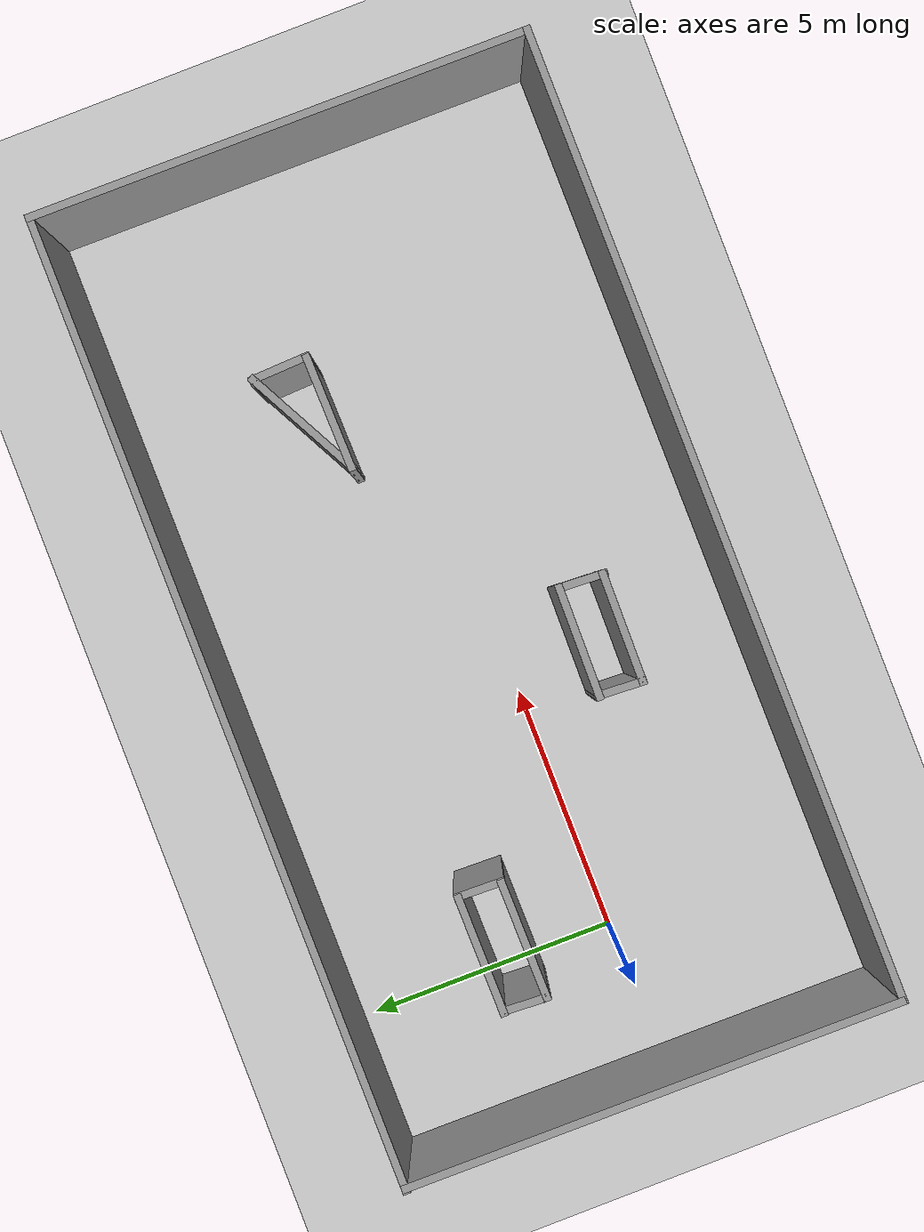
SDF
<sdf version="1.6">
 <world name="default">
  <light name="sun" type="directional">
   <pose>0 0 10 0 -0 0</pose>
   <diffuse>0.8 0.8 0.8 1</diffuse>
   <specular>0.2 0.2 0.2 1</specular>
   <attenuation>
    <range>1000</range>
    <constant>0.9</constant>
    <linear>0.01</linear>
    <quadratic>0.001</quadratic>
   </attenuation>
   <direction>-0.5 0.1 -0.9</direction>
  </light>
  <model name="ground_plane">
   <static>1</static>
   <link name="link">
    <collision name="collision">
     <geometry><plane><normal>0 0 1</normal><size>100 100</size></plane></geometry>
     <surface>
      <contact><collide_bitmask>65535</collide_bitmask></contact>
      <friction><ode><mu>100</mu><mu2>50</mu2></ode></friction>
     </surface>
    </collision>
    <visual name="visual">
     <cast_shadows>0</cast_shadows>
     <geometry><plane><normal>0 0 1</normal><size>100 100</size></plane></geometry>
     <material>
      <script><uri>file://media/materials/scripts/gazebo.material</uri><name>Gazebo/Grey</name></script>
     </material>
    </visual>
   </link>
  </model>
  <gravity>0 0 -9.8</gravity>
  <magnetic_field>6e-06 2.3e-05 -4.2e-05</magnetic_field>
  <atmosphere type="adiabatic"/>
  <physics name="default_physics" default="0" type="ode">
   <max_step_size>0.001</max_step_size>
   <real_time_factor>1</real_time_factor>
   <real_time_update_rate>1000</real_time_update_rate>
  </physics>
  <scene><ambient>0.4 0.4 0.4 1</ambient><background>0.7 0.7 0.7 1</background><shadows>1</shadows></scene>
  <audio><device>default</device></audio>
  <spherical_coordinates>
   <surface_model>EARTH_WGS84</surface_model>
   <latitude_deg>0</latitude_deg>
   <longitude_deg>0</longitude_deg>
   <elevation>0</elevation>
   <heading_deg>0</heading_deg>
  </spherical_coordinates>
  <model name="Overview2">
   <pose>6.93362 0.397648 0 0 -0 0</pose>
   <link name="Wall_32">
    <collision name="Wall_32_Collision">
     <geometry><box><size>10.0002 0.15 2.5</size></box></geometry>
     <pose>0 0 1.25 0 -0 0</pose>
    </collision>
    <visual name="Wall_32_Visual">
     <pose>0 0 1.25 0 -0 0</pose>
     <geometry><box><size>10.0002 0.15 2.5</size></box></geometry>
     <material>
      <script><uri>file://media/materials/scripts/gazebo.material</uri><name>Gazebo/Grey</name></script>
      <ambient>1 1 1 1</ambient>
     </material>
     <meta><layer>0</layer></meta>
    </visual>
    <pose>-9.6597 -0.015408 0 0 -0 -1.57701</pose>
   </link>
   <link name="Wall_33">
    <collision name="Wall_33_Collision">
     <geometry><box><size>19.4695 0.15 2.5</size></box></geometry>
     <pose>0 0 1.25 0 -0 0</pose>
    </collision>
    <visual name="Wall_33_Visual">
     <pose>0 0 1.25 0 -0 0</pose>
     <geometry><box><size>19.4695 0.15 2.5</size></box></geometry>
     <material>
      <script><uri>file://media/materials/scripts/gazebo.material</uri><name>Gazebo/Grey</name></script>
      <ambient>1 1 1 1</ambient>
     </material>
     <meta><layer>0</layer></meta>
    </visual>
    <pose>-0.030589 -4.94041 0 0 -0 0.003167</pose>
   </link>
   <link name="Wall_34">
    <collision name="Wall_34_Collision">
     <geometry><box><size>10.0308 0.15 2.5</size></box></geometry>
     <pose>0 0 1.25 0 -0 0</pose>
    </collision>
    <visual name="Wall_34_Visual">
     <pose>0 0 1.25 0 -0 0</pose>
     <geometry><box><size>10.0308 0.15 2.5</size></box></geometry>
     <material>
      <script><uri>file://media/materials/scripts/gazebo.material</uri><name>Gazebo/Grey</name></script>
      <ambient>1 1 1 1</ambient>
     </material>
     <meta><layer>0</layer></meta>
    </visual>
    <pose>9.65971 0.030477 0 0 -0 1.5646</pose>
   </link>
   <link name="Wall_35">
    <collision name="Wall_35_Collision">
     <geometry><box><size>19.4695 0.15 2.5</size></box></geometry>
     <pose>0 0 1.25 0 -0 0</pose>
    </collision>
    <visual name="Wall_35_Visual">
     <pose>0 0 1.25 0 -0 0</pose>
     <geometry><box><size>19.4695 0.15 2.5</size></box></geometry>
     <material>
      <script><uri>file://media/materials/scripts/gazebo.material</uri><name>Gazebo/Grey</name></script>
      <ambient>1 1 1 1</ambient>
     </material>
     <meta><layer>0</layer></meta>
    </visual>
    <pose>1e-06 4.94018 0 0 -0 -3.13843</pose>
   </link>
   <link name="Wall_41">
    <collision name="Wall_41_Collision">
     <geometry><box><size>2.43072 0.15 2.5</size></box></geometry>
     <pose>0 0 1.25 0 -0 0</pose>
    </collision>
    <visual name="Wall_41_Visual">
     <pose>0 0 1.25 0 -0 0</pose>
     <geometry><box><size>2.43072 0.15 2.5</size></box></geometry>
     <material>
      <script><uri>file://media/materials/scripts/gazebo.material</uri><name>Gazebo/Grey</name></script>
      <ambient>1 1 1 1</ambient>
     </material>
     <meta><layer>0</layer></meta>
    </visual>
    <pose>-6.11385 1.19838 0 0 -0 0.010142</pose>
   </link>
   <link name="Wall_42">
    <collision name="Wall_42_Collision">
     <geometry><box><size>1 0.15 2.5</size></box></geometry>
     <pose>0 0 1.25 0 -0 0</pose>
    </collision>
    <visual name="Wall_42_Visual">
     <pose>0 0 1.25 0 -0 0</pose>
     <geometry><box><size>1 0.15 2.5</size></box></geometry>
     <material>
      <script><uri>file://media/materials/scripts/gazebo.material</uri><name>Gazebo/Grey</name></script>
      <ambient>1 1 1 1</ambient>
     </material>
     <meta><layer>0</layer></meta>
    </visual>
    <pose>-4.93885 1.63494 0 0 -0 1.54359</pose>
   </link>
   <link name="Wall_43">
    <collision name="Wall_43_Collision">
     <geometry><box><size>2.43072 0.15 2.5</size></box></geometry>
     <pose>0 0 1.25 0 -0 0</pose>
    </collision>
    <visual name="Wall_43_Visual">
     <pose>0 0 1.25 0 -0 0</pose>
     <geometry><box><size>2.43072 0.15 2.5</size></box></geometry>
     <material>
      <script><uri>file://media/materials/scripts/gazebo.material</uri><name>Gazebo/Grey</name></script>
      <ambient>1 1 1 1</ambient>
     </material>
     <meta><layer>0</layer></meta>
    </visual>
    <pose>-6.09072 2.04838 0 0 -0 -3.13145</pose>
   </link>
   <link name="Wall_44">
    <collision name="Wall_44_Collision">
     <geometry><box><size>1.00126 0.15 2.5</size></box></geometry>
     <pose>0 0 1.25 0 -0 0</pose>
    </collision>
    <visual name="Wall_44_Visual">
     <pose>0 0 1.25 0 -0 0</pose>
     <geometry><box><size>1.00126 0.15 2.5</size></box></geometry>
     <material>
      <script><uri>file://media/materials/scripts/gazebo.material</uri><name>Gazebo/Grey</name></script>
      <ambient>1 1 1 1</ambient>
     </material>
     <meta><layer>0</layer></meta>
    </visual>
    <pose>-7.23103 1.61181 0 0 -0 -1.62517</pose>
   </link>
   <link name="Wall_46">
    <collision name="Wall_46_Collision">
     <geometry><box><size>1.00126 0.15 2.5</size></box></geometry>
     <pose>0 0 1.25 0 -0 0</pose>
    </collision>
    <visual name="Wall_46_Visual">
     <pose>0 0 1.25 0 -0 0</pose>
     <geometry><box><size>1.00126 0.15 2.5</size></box></geometry>
     <material>
      <script><uri>file://media/materials/scripts/gazebo.material</uri><name>Gazebo/Grey</name></script>
      <ambient>1 1 1 1</ambient>
     </material>
     <meta><layer>0</layer></meta>
    </visual>
    <pose>-2.39673 -2.15264 0 0 -0 -1.62517</pose>
   </link>
   <link name="Wall_47">
    <collision name="Wall_47_Collision">
     <geometry><box><size>2.27326 0.15 2.5</size></box></geometry>
     <pose>0 0 1.25 0 -0 0</pose>
    </collision>
    <visual name="Wall_47_Visual">
     <pose>0 0 1.25 0 -0 0</pose>
     <geometry><box><size>2.27326 0.15 2.5</size></box></geometry>
     <material>
      <script><uri>file://media/materials/scripts/gazebo.material</uri><name>Gazebo/Grey</name></script>
      <ambient>1 1 1 1</ambient>
     </material>
     <meta><layer>0</layer></meta>
    </visual>
    <pose>-1.35829 -2.58921 0 0 -0 -0.010894</pose>
   </link>
   <link name="Wall_48">
    <collision name="Wall_48_Collision">
     <geometry><box><size>1.00126 0.15 2.5</size></box></geometry>
     <pose>0 0 1.25 0 -0 0</pose>
    </collision>
    <visual name="Wall_48_Visual">
     <pose>0 0 1.25 0 -0 0</pose>
     <geometry><box><size>1.00126 0.15 2.5</size></box></geometry>
     <material>
      <script><uri>file://media/materials/scripts/gazebo.material</uri><name>Gazebo/Grey</name></script>
      <ambient>1 1 1 1</ambient>
     </material>
     <meta><layer>0</layer></meta>
    </visual>
    <pose>-0.273598 -2.1989 0 0 -0 1.51642</pose>
   </link>
   <link name="Wall_49">
    <collision name="Wall_49_Collision">
     <geometry><box><size>2.29738 0.15 2.5</size></box></geometry>
     <pose>0 0 1.25 0 -0 0</pose>
    </collision>
    <visual name="Wall_49_Visual">
     <pose>0 0 1.25 0 -0 0</pose>
     <geometry><box><size>2.29738 0.15 2.5</size></box></geometry>
     <material>
      <script><uri>file://media/materials/scripts/gazebo.material</uri><name>Gazebo/Grey</name></script>
      <ambient>1 1 1 1</ambient>
     </material>
     <meta><layer>0</layer></meta>
    </visual>
    <pose>-1.3236 -1.73921 0 0 -0 3.13082</pose>
   </link>
   <link name="Wall_51">
    <collision name="Wall_51_Collision">
     <geometry><box><size>2.34301 0.15 2.5</size></box></geometry>
     <pose>0 0 1.25 0 -0 0</pose>
    </collision>
    <visual name="Wall_51_Visual">
     <pose>0 0 1.25 0 -0 0</pose>
     <geometry><box><size>2.34301 0.15 2.5</size></box></geometry>
     <material>
      <script><uri>file://media/materials/scripts/gazebo.material</uri><name>Gazebo/Grey</name></script>
      <ambient>1 1 1 1</ambient>
     </material>
     <meta><layer>0</layer></meta>
    </visual>
    <pose>4.32027 1.07116 0 0 -0 0.021096</pose>
   </link>
   <link name="Wall_52">
    <collision name="Wall_52_Collision">
     <geometry><box><size>1.22712 0.15 2.5</size></box></geometry>
     <pose>0 0 1.25 0 -0 0</pose>
    </collision>
    <visual name="Wall_52_Visual">
     <pose>0 0 1.25 0 -0 0</pose>
     <geometry><box><size>1.22712 0.15 2.5</size></box></geometry>
     <material>
      <script><uri>file://media/materials/scripts/gazebo.material</uri><name>Gazebo/Grey</name></script>
      <ambient>1 1 1 1</ambient>
     </material>
     <meta><layer>0</layer></meta>
    </visual>
    <pose>5.41653 1.63272 0 0 -0 1.61373</pose>
   </link>
   <link name="Wall_53">
    <collision name="Wall_53_Collision">
     <geometry><box><size>2.57237 0.15 2.5</size></box></geometry>
     <pose>0 0 1.25 0 -0 0</pose>
    </collision>
    <visual name="Wall_53_Visual">
     <pose>0 0 1.25 0 -0 0</pose>
     <geometry><box><size>2.57237 0.15 2.5</size></box></geometry>
     <material>
      <script><uri>file://media/materials/scripts/gazebo.material</uri><name>Gazebo/Grey</name></script>
      <ambient>1 1 1 1</ambient>
     </material>
     <meta><layer>0</layer></meta>
    </visual>
    <pose>4.32027 1.6096 0 0 -0 -2.65948</pose>
   </link>
   <static>1</static>
  </model>
 </world>
</sdf>
